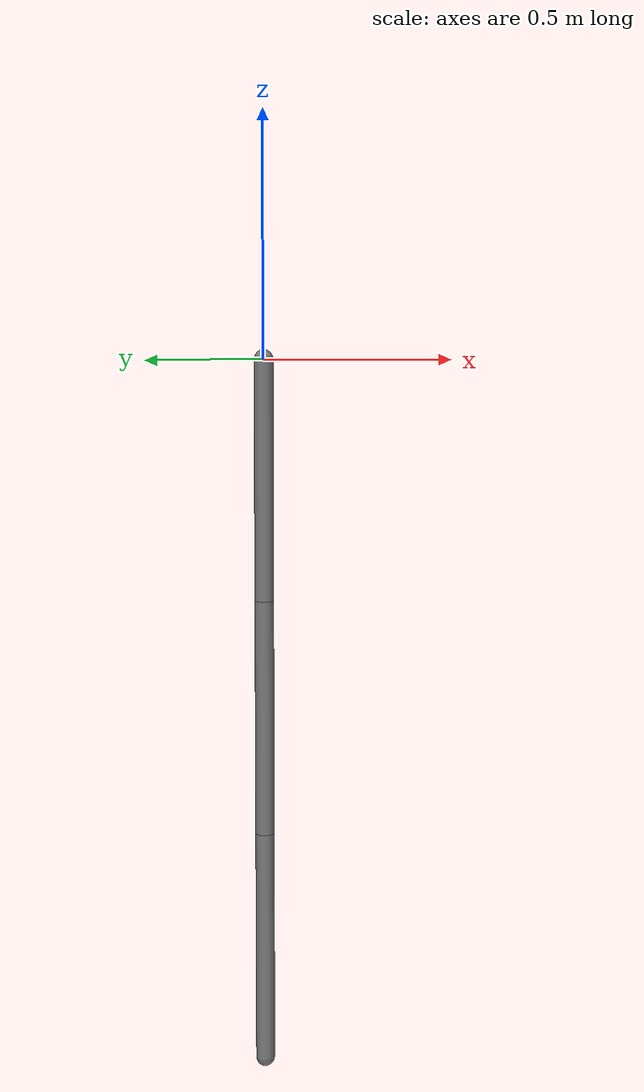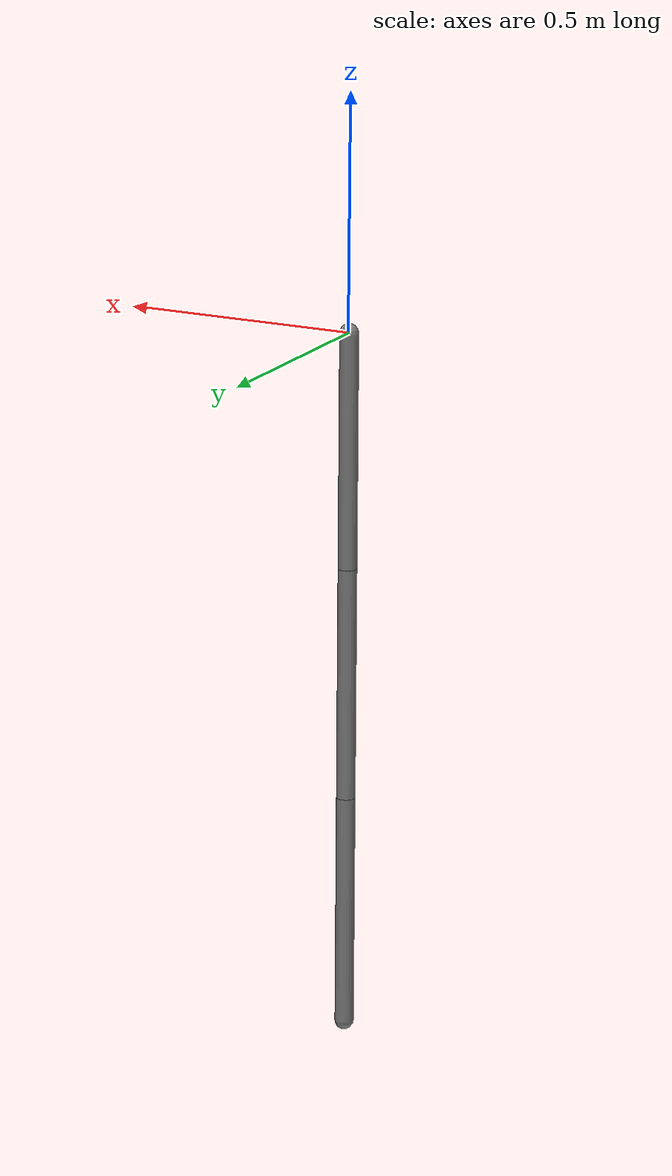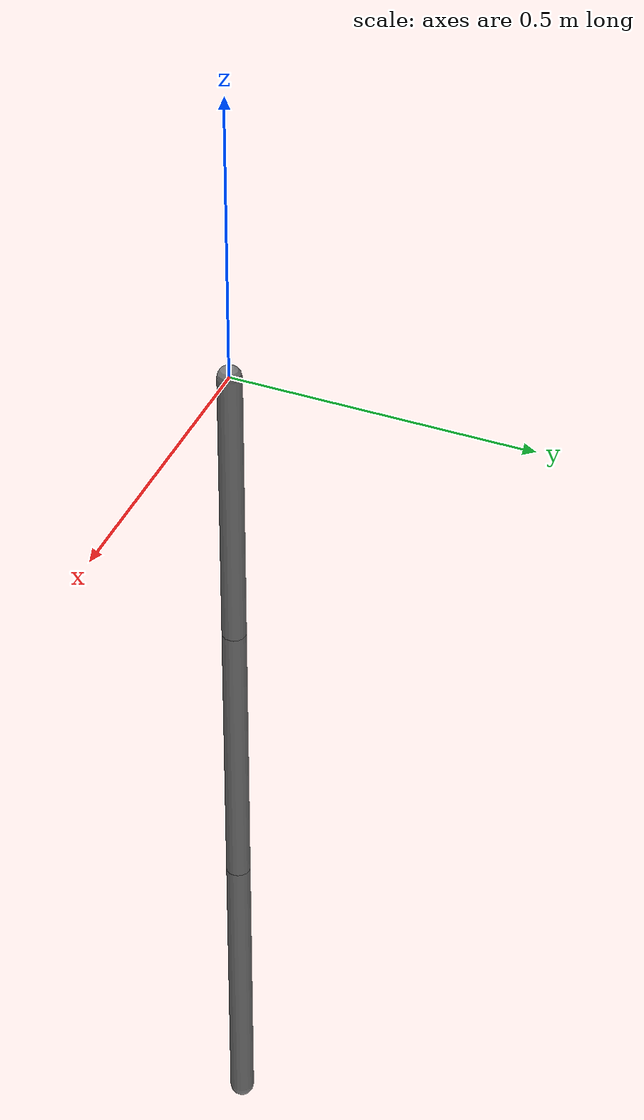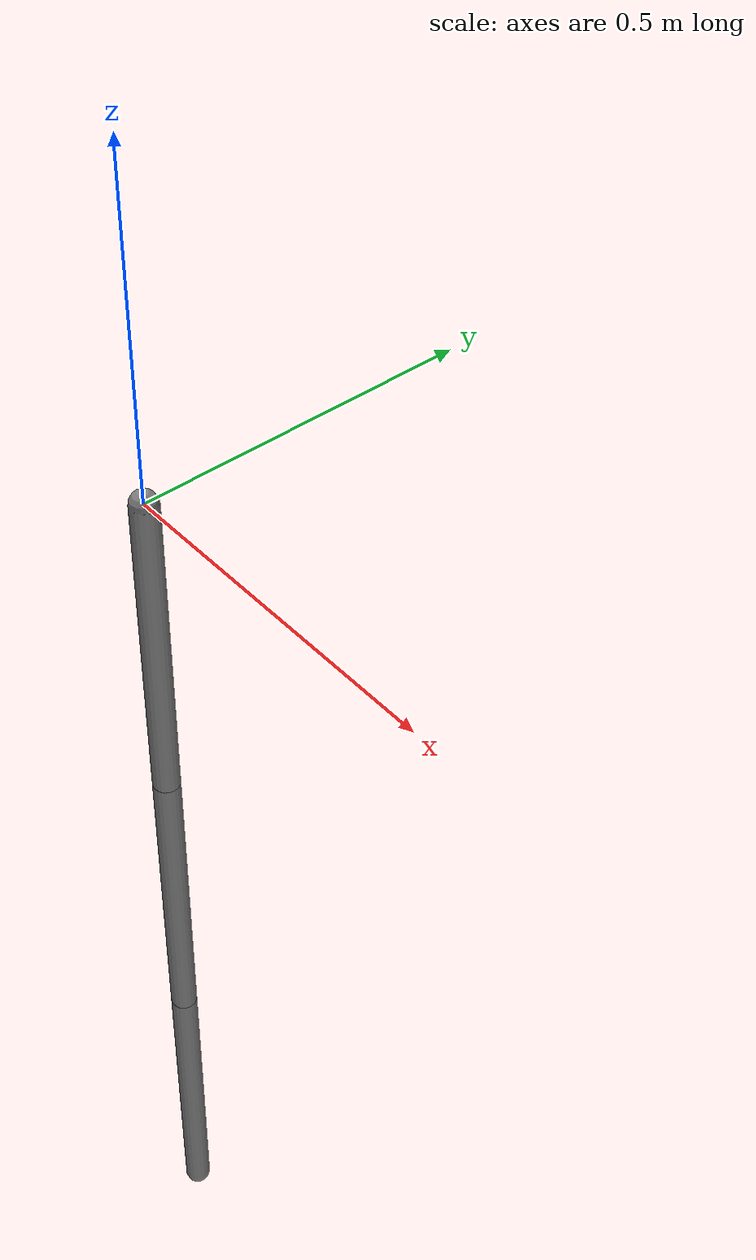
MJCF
<mujoco model="multi-actuator">
      <compiler angle="radian"/>
      <option gravity="0 0 -9.81" timestep="0.002"/>
      <worldbody>
        <body name="link1" pos="0 0 0">
          <joint name="j1" type="hinge" axis="0 1 0"/>
          <inertial pos="0 0 -0.3" mass="0.5" diaginertia="0.01 0.01 0.001"/>
          <geom type="capsule" size="0.02" fromto="0 0 0  0 0 -0.5" rgba="0.5 0.5 0.5 1"/>
          <body name="link2" pos="0 0 -0.5">
            <joint name="j2" type="hinge" axis="0 1 0"/>
            <inertial pos="0 0 -0.3" mass="0.5" diaginertia="0.01 0.01 0.001"/>
            <geom type="capsule" size="0.02" fromto="0 0 0  0 0 -0.5" rgba="0.5 0.5 0.5 1"/>
            <body name="link3" pos="0 0 -0.5">
              <joint name="j3" type="hinge" axis="0 1 0"/>
              <inertial pos="0 0 -0.3" mass="0.5" diaginertia="0.01 0.01 0.001"/>
              <geom type="capsule" size="0.02" fromto="0 0 0  0 0 -0.5" rgba="0.5 0.5 0.5 1"/>
            </body>
          </body>
        </body>
      </worldbody>
      <actuator>
        <motor name="m1" joint="j1" gear="1"/>
        <motor name="m2" joint="j2" gear="1"/>
      </actuator>
    </mujoco>
